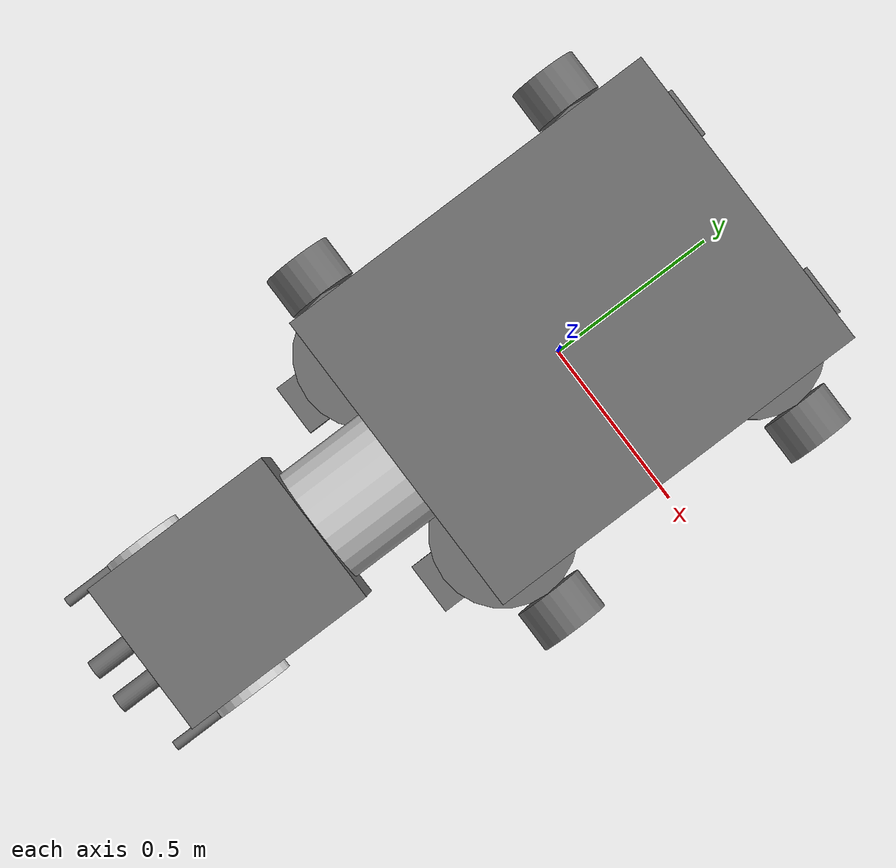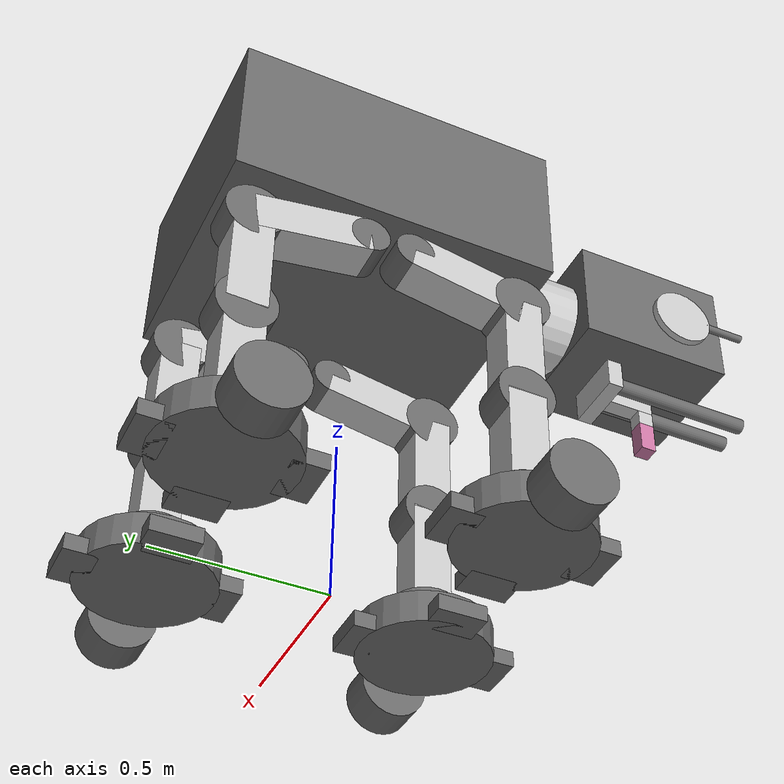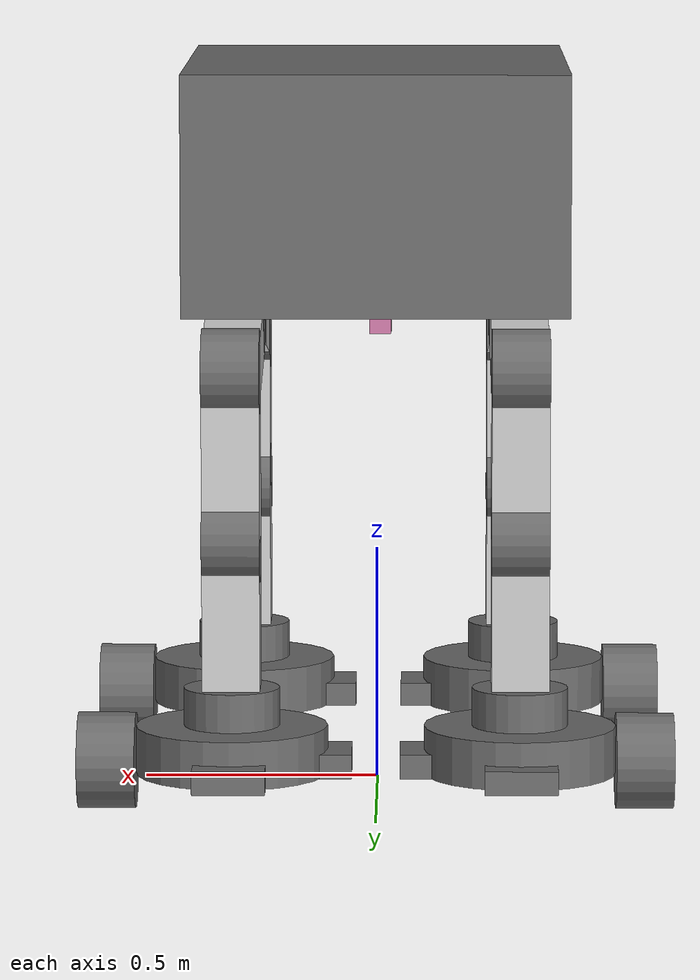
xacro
<?xml version="1.0"?>

<robot xmlns:xacro = "http://www.ros.org/wiki/xacro" name="AT-AT_w">

<xacro:property name="robotname" value="AT-AT_w"/>

<xacro:macro name="inertial" params="mass">
        <inertial>
            <mass value="${mass}"/>
            <inertia ixx="1e-3" ixy = "0.0" ixz="0.0" iyy="1e-3" iyz="0.0" izz="1e-3"/>
            <origin xyz="0.0 0.0 0.0" rpy="0.0 0.0 0.0"/>
        </inertial>
</xacro:macro>

<xacro:include filename="$(find mproject)/model/AT-AT_w.gazebo"/>

    <material name="light grey">
        <color rgba="0.79 0.79 0.79 1" />
    </material>

    <material name="dark grey">
        <color rgba="0.42 0.42 0.42 1" />
    </material>

    <link name="base_footprint"/>

    <link name="base_link">
        <visual>
            <geometry>
                <box size="0.8 1 0.5" />
            </geometry>
            <origin xyz="0 0 0" rpy="0 0 0" />
            <material name="dark grey" />
        </visual>

    <collision>
        <geometry>
            <box size="0.8 1 0.5" />
        </geometry>
    </collision>

    <xacro:inertial mass="${0.4*1200}"/>
    </link>

    <joint name="base_footprint_base_joint" type="fixed">
        <parent link="base_footprint"/>
        <child link="base_link"/>
        <origin xyz="0 0 1.3" rpy="0 0 0"/>
    </joint>

    <link name="neck_link">
        <visual>
            <geometry>
                <cylinder length="0.25" radius="0.15"/>
            </geometry>
            <origin xyz="0 0 0" rpy="0 1.57075 1.57075"/>
            <material name="light grey">
                <color rgba="0.79 0.79 0.79 1" />
            </material>
        </visual>

        <collision>
            <geometry>
                <cylinder length="0.25" radius="0.15"/>
            </geometry>
        </collision>

     <xacro:inertial mass="${0.018*1200}"/>
    </link>

    <joint name="base_neck_joint" type="fixed">
        <parent link="base_link"/>
        <child link="neck_link"/>
        <origin xyz="0 -0.62 -0.05" rpy="0 0 0"/>
    </joint>

    <link name="head_link">
        <visual>
            <geometry>
                <box size="0.4 0.5 0.35"/>
            </geometry>
            <origin xyz="0 0 0" rpy="0 0 0"/>
            <material name="dark grey" />
        </visual>

        <collision>
            <geometry>
                <box size="0.4 0.5 0.35"/>
            </geometry>
        </collision>

     <xacro:inertial mass="${0.07*1200}"/>
    </link>

    <joint name="neck_head_joint" type="fixed">
        <parent link="neck_link"/>
        <child link="head_link"/>
        <origin xyz="0 -0.37 0.02" rpy="0 0 0"/>
    </joint>

    <link name="eye_left_link">
        <visual>
            <geometry>
                <cylinder length="0.025" radius="0.1"/>
            </geometry>
            <origin xyz="0 0 0" rpy="0 1.57075 1.57075"/>
            <material name="light grey" />
        </visual>

        <collision>
            <geometry>
                <cylinder length="0.025" radius="0.1"/>
            </geometry>
        </collision>

     <xacro:inertial mass="${0.000785*1200}"/>
    </link>

    <joint name="head_eye_left_joint" type="fixed">
        <parent link="head_link"/>
        <child link="eye_left_link"/>
        <origin xyz="0.21 -0.1 0" rpy="0 0 1.57057"/>
    </joint>

    <link name="eye_right_link">
        <visual>
            <geometry>
                <cylinder length="0.025" radius="0.1"/>
            </geometry>
            <origin xyz="0 0 0" rpy="0 1.57075 1.57075"/>
            <material name="light grey" />
        </visual>

        <collision>
            <geometry>
                <cylinder length="0.025" radius="0.1"/>
            </geometry>
        </collision>

     <xacro:inertial mass="${0.000785*1200}"/>
    </link>

    <joint name="head_eye_right_joint" type="fixed">
        <parent link="head_link"/>
        <child link="eye_right_link"/>
        <origin xyz="-0.21 -0.1 0" rpy="0 0 1.57057"/>
    </joint>

    <link name="shooter_left_link">
        <visual>
            <geometry>
                <cylinder length="0.15" radius="0.0125"/>
            </geometry>
            <origin xyz="0 0.15 0" rpy="0 1.57075 1.57075"/>
            <material name="dark grey" />
        </visual>

        <collision>
            <geometry>
                <cylinder length="0.15" radius="0.0125"/>
            </geometry>
        </collision>

     <xacro:inertial mass="${0.000884*1200}"/>
    </link>

    <joint name="eye_left_shooter_joint" type="fixed">
        <limit effort="100" velocity="1.0" lower="-1.0" upper="0"/>
        <parent link="eye_left_link"/>
        <child link="shooter_left_link"/>
        <origin xyz="0 0 0" rpy="0 0 1.57057"/>
        <axis xyz="1 0 0" rpy="0 0 0"/>
        <dynamics damping = "1.0" friction ="0.4"/>
    </joint>

    <link name="shooter_right_link">
        <visual>
            <geometry>
                <cylinder length="0.15" radius="0.0125"/>
            </geometry>
            <origin xyz="0 0.15 0" rpy="0 1.57075 1.57075"/>
            <material name="dark grey" />
        </visual>

        <collision>
            <geometry>
                <cylinder length="0.15" radius="0.0125"/>
            </geometry>
        </collision>

     <xacro:inertial mass="${0.000884*1200}"/>
    </link>

    <joint name="eye_right_shooter_joint" type="fixed">
        <limit effort="100" velocity="1.0" lower="-1.0" upper="0"/>
        <parent link="eye_right_link"/>
        <child link="shooter_right_link"/>
        <origin xyz="0 0 0" rpy="0 0 1.57057"/>
        <axis xyz="1 0 0" rpy="0 0 0"/>
        <dynamics damping = "1.0" friction ="0.4"/>
    </joint>

    <link name="mouth1_link">
        <visual>
            <geometry>
                <box size="0.05 0.15 0.1"/>
            </geometry>
            <origin xyz="0 0 0" rpy="0 0 0"/>
            <material name="light grey" />
        </visual>

        <collision>
            <geometry>
                <box size="0.05 0.15 0.1"/>
            </geometry>
        </collision>

     <xacro:inertial mass="${0.00075*1200}"/>
    </link>

    <joint name="head_mouth1_joint" type="fixed">
        <parent link="head_link"/>
        <child link="mouth1_link"/>
        <origin xyz="0 0 -0.225" rpy="0 0 0"/>
        <axis xyz="0 0 0" rpy="0 0 0"/>
    </joint>

    <link name="mouth2_link">
        <visual>
            <geometry>
                <box size="0.05 0.2 0.1"/>
            </geometry>
            <origin xyz="0 0 0" rpy="0 0 0"/>
            <material name="light grey" />
        </visual>

        <collision>
            <geometry>
                <box size="0.05 0.2 0.1"/>
            </geometry>
        </collision>

     <xacro:inertial mass="${0.001*1200}"/>
    </link>

    <joint name="head_mouth2_joint" type="fixed">
        <parent link="head_link"/>
        <child link="mouth2_link"/>
        <origin xyz="0 0.1 -0.225" rpy="0 0 1.57057"/>
        <axis xyz="0 0 0" rpy="0 0 0"/>
    </joint>

    <link name="main_shooter_right_link">
        <visual>
            <geometry>
                <cylinder length="0.5" radius="0.025"/>
            </geometry>
            <origin xyz="0 0.25 0" rpy="0 1.57075 1.57075"/>
            <material name="dark grey" />
        </visual>

        <collision>
            <geometry>
                <cylinder length="0.5" radius="0.025"/>
            </geometry>
        </collision>

     <xacro:inertial mass="${0.000982*1200}"/>
    </link>

    <joint name="mouth_main_shooter_right_joint" type="fixed">
        <limit effort="100" velocity="1.0" lower="-0.2" upper="0"/>
        <parent link="mouth2_link"/>
        <child link="main_shooter_right_link"/>
        <origin xyz="0 0.05 0" rpy="0 0 1.57057"/>
        <axis xyz="1 0 0" rpy="0 0 0"/>
        <dynamics damping = "1.0" friction ="0.4"/>
    </joint>

    <link name="main_shooter_left_link">
        <visual>
            <geometry>
                <cylinder length="0.5" radius="0.025"/>
            </geometry>
            <origin xyz="0 0.25 0" rpy="0 1.57075 1.57075"/>
            <material name="dark grey" />
        </visual>

        <collision>
            <geometry>
                <cylinder length="0.5" radius="0.025"/>
            </geometry>
        </collision>

     <xacro:inertial mass="${0.000982*1200}"/>
    </link>

    <joint name="mouth_main_shooter_left_joint" type="fixed">
        <limit effort="100" velocity="1.0" lower="-0.2" upper="0"/>
        <parent link="mouth2_link"/>
        <child link="main_shooter_left_link"/>
        <origin xyz="0 -0.05 0" rpy="0 0 1.57057"/>
        <axis xyz="1 0 0" rpy="0 0 0"/>
        <dynamics damping = "1.0" friction ="0.4"/>
    </joint>

    <link name="leg1_u_link">
        <visual>
            <geometry>
                <cylinder length="0.12" radius="0.06"/>
            </geometry>
            <origin xyz="0 0 0" rpy="0 1.57075 0"/>
            <material name="dark grey" />
        </visual>

        <collision>
            <geometry>
                <cylinder length="0.12" radius="0.06"/>
            </geometry>
        </collision>

        <xacro:inertial mass="${0.00136*1200}"/>
    </link>

    <joint name="base_leg1_joint" type="fixed">
        <parent link="base_link"/>
        <child link="leg1_u_link"/>
        <origin xyz="0.3 -0.07 -0.31" rpy="0 0 0"/>
    </joint>

    <link name="leg1_p1_link">
        <visual>
            <geometry>
                <box size="0.12 0.12 0.35"/>
            </geometry>
            <origin xyz="0 0 -0.175" rpy="0 0 0"/>
            <material name="light grey" />
        </visual>

        <collision>
            <geometry>
                <box size="0.12 0.12 0.35"/>
            </geometry>
        </collision>

        <xacro:inertial mass="${0.00504*1200}"/>
    </link>

    <joint name="leg1_u_p1_link" type="fixed">
        <limit effort="100" velocity="1.0" lower="0" upper="0.5"/>
        <parent link="leg1_u_link"/>
        <child link="leg1_p1_link"/>
        <origin xyz="0 0 0" rpy="-1.4 0 0"/>
        <dynamics damping = "1.0" friction ="0.4"/>
    </joint>

    <link name="leg1_m_link">
        <visual>
            <geometry>
                <cylinder length="0.12" radius="0.09"/>
            </geometry>
            <origin xyz="0 0 0" rpy="0 1.57075 0"/>
            <material name="dark grey" />
        </visual>

        <collision>
            <geometry>
                <cylinder length="0.12" radius="0.09"/>
            </geometry>
        </collision>

        <xacro:inertial mass="${0.00305*1200}"/>
    </link>

    <joint name="leg1_p1_m_link" type="fixed">
        <parent link="leg1_p1_link"/>
        <child link="leg1_m_link"/>
        <origin xyz="0 0 -0.35" rpy="0 0 0"/>
    </joint>

    <link name="leg1_p2_link">
        <visual>
            <geometry>
                <box size="0.12 0.12 0.35"/>
            </geometry>
            <origin xyz="0 0 -0.175" rpy="0 0 0"/>
            <material name="light grey" />
        </visual>

        <collision>
            <geometry>
                <box size="0.12 0.12 0.35"/>
            </geometry>
        </collision>

        <xacro:inertial mass="${0.00504*1200}"/>
    </link>

    <joint name="leg1_m_p2_link" type="fixed">
        <limit effort="100" velocity="1.2" lower="-1" upper="0.2"/>
        <parent link="leg1_m_link"/>
        <child link="leg1_p2_link"/>
        <origin xyz="0 0 0" rpy="1.4 0 0"/>
        <dynamics damping = "1.0" friction ="0.4"/>
    </joint>

    <link name="leg1_l_link">
        <visual>
            <geometry>
                <cylinder length="0.12" radius="0.09"/>
            </geometry>
            <origin xyz="0 0 0" rpy="0 1.57075 0"/>
            <material name="dark grey" />
        </visual>

        <collision>
            <geometry>
                <cylinder length="0.12" radius="0.09"/>
            </geometry>
        </collision>

        <xacro:inertial mass="${0.00305*1200}"/>
    </link>

    <joint name="leg1_p1_l_link" type="fixed">
        <parent link="leg1_p2_link"/>
        <child link="leg1_l_link"/>
        <origin xyz="0 0 -0.35" rpy="0 0 0"/>
    </joint>

    <link name="leg1_p3_link">
        <visual>
            <geometry>
                <box size="0.12 0.12 0.35"/>
            </geometry>
            <origin xyz="0 0 -0.175" rpy="0 0 0"/>
            <material name="light grey" />
        </visual>

        <collision>
            <geometry>
                <box size="0.12 0.12 0.35"/>
            </geometry>
        </collision>

        <xacro:inertial mass="${0.00504*1200}"/>
    </link>

    <joint name="leg1_l_p3_link" type="fixed">
        <limit effort="100" velocity="1.2" lower="0" upper="1"/>
        <parent link="leg1_l_link"/>
        <child link="leg1_p3_link"/>
        <origin xyz="0 0 0" rpy="0 0 0"/>
        <dynamics damping = "1.0" friction ="0.4"/>
    </joint>

    <link name="leg1_feet1_link">
        <visual>
            <geometry>
                <cylinder length="0.08" radius="0.1"/>
            </geometry>
            <origin xyz="0 0 0" rpy="0 0 0"/>
            <material name="dark grey" />
        </visual>

        <collision>
            <geometry>
                <cylinder length="0.08" radius="0.1"/>
            </geometry>
        </collision>

        <xacro:inertial mass="${0.00251*1200}"/>
    </link>

    <joint name="leg1_p3_feet1_joint" type="fixed">
        <parent link="leg1_p3_link"/>
        <child link="leg1_feet1_link"/>
        <origin xyz="0 0 -0.35" rpy="0 0 0"/>
        <axis xyz="0 0 0" rpy="0 0 0"/>
    </joint>

    <link name="leg1_feet2_link">
        <visual>
            <geometry>
                <cylinder length="0.1" radius="0.2"/>
            </geometry>
            <origin xyz="0 0 0" rpy="0 0 0"/>
            <material name="dark grey" />
        </visual>

        <collision>
            <geometry>
                <cylinder length="0.1" radius="0.2"/>
            </geometry>
        </collision>

        <xacro:inertial mass="${0.013*1200}"/>
    </link>

    <joint name="leg1_p3_feet2_joint" type="fixed">
        <parent link="leg1_feet1_link"/>
        <child link="leg1_feet2_link"/>
        <origin xyz="0 0 -0.09" rpy="0 0 0"/>
        <axis xyz="0 0 0" rpy="0 0 0"/>
    </joint>

    <link name="leg1_toe1_link">
        <visual>
            <geometry>
                <cylinder length="0.12" radius="0.1"/>    <!-- wheel -->
            </geometry>
            <origin xyz="0 0 0" rpy="1.57057 0 1.57057"/>
            <material name="dark grey" />
        </visual>

        <collision>
        <origin xyz="0 0 0" rpy="1.57057 0 1.57057"/>
            <geometry>
                <cylinder length="0.12" radius="0.1"/>    <!-- wheel -->
            </geometry>
        </collision>

        <xacro:inertial mass="${0.00075*1180}"/>
    </link>

    <joint name="leg1_feet2_toe1_joint" type="continuous">
        <parent link="leg1_feet2_link"/>
        <child link="leg1_toe1_link"/>
        <origin xyz="0.26 0 -0.025" rpy="0 0 0"/>
        <axis xyz="1 0 0" rpy="0 0 0"/>
        <limit effort="10.0" velocity="10.0"/>
        <dynamics damping = "0.01" friction ="0.4"/>
    </joint>

    <link name="leg1_toe2_link">
        <visual>
            <geometry>
                <box size="0.1 0.15 0.05"/>
            </geometry>
            <origin xyz="0 0 0" rpy="0 0 0"/>
            <material name="dark grey" />
        </visual>

        <collision>
            <geometry>
                <box size="0.1 0.15 0.05"/>
            </geometry>
        </collision>

        <xacro:inertial mass="${0.00075*1200}"/>
    </link>

    <joint name="leg1_feet2_toe2_joint" type="fixed">
        <parent link="leg1_feet2_link"/>
        <child link="leg1_toe2_link"/>
        <origin xyz="0 0.2 -0.025" rpy="0 0 1.57057"/>
        <axis xyz="0 0 0" rpy="0 0 0"/>
    </joint>

    <link name="leg1_toe3_link">
        <visual>
            <geometry>
                <box size="0.1 0.15 0.05"/>
            </geometry>
            <origin xyz="0 0 0" rpy="0 0 0"/>
            <material name="dark grey" />
        </visual>

        <collision>
            <geometry>
                <box size="0.1 0.15 0.05"/>
            </geometry>
        </collision>

        <xacro:inertial mass="${0.00075*1200}"/>
    </link>

    <joint name="leg1_feet2_toe3_joint" type="fixed">
        <parent link="leg1_feet2_link"/>
        <child link="leg1_toe3_link"/>
        <origin xyz="-0.2 0 -0.025" rpy="0 0 0"/>
        <axis xyz="0 0 0" rpy="0 0 0"/>
    </joint>

    <link name="leg1_toe4_link">
        <visual>
            <geometry>
                <box size="0.1 0.15 0.05"/>
            </geometry>
            <origin xyz="0 0 0" rpy="0 0 0"/>
            <material name="dark grey" />
        </visual>

        <collision>
            <geometry>
                <box size="0.1 0.15 0.05"/>
            </geometry>
        </collision>

        <xacro:inertial mass="${0.00075*1200}"/>
    </link>

    <joint name="leg1_feet2_toe4_joint" type="fixed">
        <parent link="leg1_feet2_link"/>
        <child link="leg1_toe4_link"/>
        <origin xyz="0 -0.2 -0.025" rpy="0 0 1.57057"/>
        <axis xyz="0 0 0" rpy="0 0 0"/>
    </joint>

    <link name="leg2_u_link">
        <visual>
            <geometry>
                <cylinder length="0.12" radius="0.06"/>
            </geometry>
            <origin xyz="0 0 0" rpy="0 1.57075 0"/>
            <material name="dark grey" />
        </visual>

        <collision>
            <geometry>
                <cylinder length="0.12" radius="0.06"/>
            </geometry>
        </collision>

        <xacro:inertial mass="${0.00136*1200}"/>
    </link>

    <joint name="base_leg2_joint" type="fixed">
        <parent link="base_link"/>
        <child link="leg2_u_link"/>
        <origin xyz="-0.3 -0.07 -0.31" rpy="0 0 0"/>
    </joint>

    <link name="leg2_p1_link">
        <visual>
            <geometry>
                <box size="0.12 0.12 0.35"/>
            </geometry>
            <origin xyz="0 0 -0.175" rpy="0 0 0"/>
            <material name="light grey" />
        </visual>

        <collision>
            <geometry>
                <box size="0.12 0.12 0.35"/>
            </geometry>
        </collision>

        <xacro:inertial mass="${0.00504*1200}"/>
    </link>

    <joint name="leg2_u_p1_link" type="fixed">
        <limit effort="100" velocity="1.0" lower="0" upper="0.5"/>
        <parent link="leg2_u_link"/>
        <child link="leg2_p1_link"/>
        <origin xyz="0 0 0" rpy="-1.4 0 0"/>
        <dynamics damping = "1.0" friction ="0.4"/>
    </joint>

    <link name="leg2_m_link">
        <visual>
            <geometry>
                <cylinder length="0.12" radius="0.09"/>
            </geometry>
            <origin xyz="0 0 0" rpy="0 1.57075 0"/>
            <material name="dark grey" />
        </visual>

        <collision>
            <geometry>
                <cylinder length="0.12" radius="0.09"/>
            </geometry>
        </collision>

        <xacro:inertial mass="${0.00305*1200}"/>
    </link>

    <joint name="leg2_p1_m_link" type="fixed">
        <parent link="leg2_p1_link"/>
        <child link="leg2_m_link"/>
        <origin xyz="0 0 -0.35" rpy="0 0 0"/>
    </joint>

    <link name="leg2_p2_link">
        <visual>
            <geometry>
                <box size="0.12 0.12 0.35"/>
            </geometry>
            <origin xyz="0 0 -0.175" rpy="0 0 0"/>
            <material name="light grey" />
        </visual>

        <collision>
            <geometry>
                <box size="0.12 0.12 0.35"/>
            </geometry>
        </collision>

        <xacro:inertial mass="${0.00504*1200}"/>
    </link>

    <joint name="leg2_m_p2_link" type="fixed">
        <limit effort="100" velocity="1.2" lower="-1" upper="0.2"/>
        <parent link="leg2_m_link"/>
        <child link="leg2_p2_link"/>
        <origin xyz="0 0 0" rpy="1.4 0 0"/>
        <dynamics damping = "1.0" friction ="0.4"/>
    </joint>

    <link name="leg2_l_link">
        <visual>
            <geometry>
                <cylinder length="0.12" radius="0.09"/>
            </geometry>
            <origin xyz="0 0 0" rpy="0 1.57075 0"/>
            <material name="dark grey" />
        </visual>

        <collision>
            <geometry>
                <cylinder length="0.12" radius="0.09"/>
            </geometry>
        </collision>

        <xacro:inertial mass="${0.00305*1200}"/>
    </link>

    <joint name="leg2_p1_l_link" type="fixed">
        <parent link="leg2_p2_link"/>
        <child link="leg2_l_link"/>
        <origin xyz="0 0 -0.35" rpy="0 0 0"/>
    </joint>

    <link name="leg2_p3_link">
        <visual>
            <geometry>
                <box size="0.12 0.12 0.35"/>
            </geometry>
            <origin xyz="0 0 -0.175" rpy="0 0 0"/>
            <material name="light grey" />
        </visual>

        <collision>
            <geometry>
                <box size="0.12 0.12 0.35"/>
            </geometry>
        </collision>

        <xacro:inertial mass="${0.00504*1200}"/>
    </link>

    <joint name="leg2_l_p3_link" type="fixed">
        <limit effort="100" velocity="1.2" lower="0" upper="1"/>
        <parent link="leg2_l_link"/>
        <child link="leg2_p3_link"/>
        <origin xyz="0 0 0" rpy="0 0 0"/>
        <dynamics damping = "1.0" friction ="0.4"/>
    </joint>

    <link name="leg2_feet1_link">
        <visual>
            <geometry>
                <cylinder length="0.08" radius="0.1"/>
            </geometry>
            <origin xyz="0 0 0" rpy="0 0 0"/>
            <material name="dark grey" />
        </visual>

        <collision>
            <geometry>
                <cylinder length="0.08" radius="0.1"/>
            </geometry>
        </collision>

        <xacro:inertial mass="${0.00251*1200}"/>
    </link>

    <joint name="leg2_p3_feet1_joint" type="fixed">
        <parent link="leg2_p3_link"/>
        <child link="leg2_feet1_link"/>
        <origin xyz="0 0 -0.35" rpy="0 0 0"/>
        <axis xyz="0 0 0" rpy="0 0 0"/>
    </joint>

    <link name="leg2_feet2_link">
        <visual>
            <geometry>
                <cylinder length="0.1" radius="0.2"/>
            </geometry>
            <origin xyz="0 0 0" rpy="0 0 0"/>
            <material name="dark grey" />
        </visual>

        <collision>
            <geometry>
                <cylinder length="0.1" radius="0.2"/>
            </geometry>
        </collision>

        <xacro:inertial mass="${0.013*1200}"/>
    </link>

    <joint name="leg2_p3_feet2_joint" type="fixed">
        <parent link="leg2_feet1_link"/>
        <child link="leg2_feet2_link"/>
        <origin xyz="0 0 -0.09" rpy="0 0 0"/>
        <axis xyz="0 0 0" rpy="0 0 0"/>
    </joint>

    <link name="leg2_toe1_link">
        <visual>
            <geometry>
                <box size="0.1 0.15 0.05"/>
            </geometry>
            <origin xyz="0 0 0" rpy="0 0 0"/>
            <material name="dark grey" />
        </visual>

        <collision>
            <geometry>
                <box size="0.1 0.15 0.05"/>
            </geometry>
        </collision>

        <xacro:inertial mass="${0.00075*1200}"/>
    </link>

    <joint name="leg2_feet2_toe1_joint" type="fixed">
        <parent link="leg2_feet2_link"/>
        <child link="leg2_toe1_link"/>
        <origin xyz="0.2 0 -0.025" rpy="0 0 0"/>
        <axis xyz="0 0 0" rpy="0 0 0"/>
    </joint>

    <link name="leg2_toe2_link">
        <visual>
            <geometry>
                <box size="0.1 0.15 0.05"/>
            </geometry>
            <origin xyz="0 0 0" rpy="0 0 0"/>
            <material name="dark grey" />
        </visual>

        <collision>
            <geometry>
                <box size="0.1 0.15 0.05"/>
            </geometry>
        </collision>

        <xacro:inertial mass="${0.00075*1200}"/>
    </link>

    <joint name="leg2_feet2_toe2_joint" type="fixed">
        <parent link="leg2_feet2_link"/>
        <child link="leg2_toe2_link"/>
        <origin xyz="0 0.2 -0.025" rpy="0 0 1.57057"/>
        <axis xyz="0 0 0" rpy="0 0 0"/>
    </joint>

    <link name="leg2_toe3_link">
        <visual>
            <geometry>
                <cylinder length="0.12" radius="0.1"/>    <!-- wheel -->
            </geometry>
            <origin xyz="0 0 0" rpy="1.57057 0 1.57057"/>
            <material name="dark grey" />
        </visual>

        <collision>
        <origin xyz="0 0 0" rpy="1.57057 0 1.57057"/>
            <geometry>
                <cylinder length="0.12" radius="0.1"/>    <!-- wheel -->
            </geometry>
        </collision>

        <xacro:inertial mass="${0.00075*1180}"/>
    </link>

    <joint name="leg2_feet2_toe3_joint" type="continuous">
        <parent link="leg2_feet2_link"/>
        <child link="leg2_toe3_link"/>
        <origin xyz="-0.26 0 -0.025" rpy="0 0 0"/>
        <axis xyz="1 0 0" rpy="0 0 0"/>
        <limit effort="10.0" velocity="10.0"/>
        <dynamics damping = "0.01" friction ="0.4"/>
    </joint>

    <link name="leg2_toe4_link">
        <visual>
            <geometry>
                <box size="0.1 0.15 0.05"/>
            </geometry>
            <origin xyz="0 0 0" rpy="0 0 0"/>
            <material name="dark grey" />
        </visual>

        <collision>
            <geometry>
                <box size="0.1 0.15 0.05"/>
            </geometry>
        </collision>

        <xacro:inertial mass="${0.00075*1200}"/>
    </link>

    <joint name="leg2_feet2_toe4_joint" type="fixed">
        <parent link="leg2_feet2_link"/>
        <child link="leg2_toe4_link"/>
        <origin xyz="0 -0.2 -0.025" rpy="0 0 1.57057"/>
        <axis xyz="0 0 0" rpy="0 0 0"/>
    </joint>

    <link name="leg3_u_link">
        <visual>
            <geometry>
                <cylinder length="0.12" radius="0.06"/>
            </geometry>
            <origin xyz="0 0 0" rpy="0 1.57075 0"/>
            <material name="dark grey" />
        </visual>

        <collision>
            <geometry>
                <cylinder length="0.12" radius="0.06"/>
            </geometry>
        </collision>

        <xacro:inertial mass="${0.00136*1200}"/>
    </link>

    <joint name="base_leg3_joint" type="fixed">
        <parent link="base_link"/>
        <child link="leg3_u_link"/>
        <origin xyz="0.3 0.07 -0.31" rpy="0 0 0"/>
    </joint>

    <link name="leg3_p1_link">
        <visual>
            <geometry>
                <box size="0.12 0.12 0.35"/>
            </geometry>
            <origin xyz="0 0 -0.175" rpy="0 0 0"/>
            <material name="light grey" />
        </visual>

        <collision>
            <geometry>
                <box size="0.12 0.12 0.35"/>
            </geometry>
        </collision>

        <xacro:inertial mass="${0.00504*1200}"/>
    </link>

    <joint name="leg3_u_p1_link" type="fixed">
        <limit effort="100" velocity="1.0" lower="0" upper="0.5"/>
        <parent link="leg3_u_link"/>
        <child link="leg3_p1_link"/>
        <origin xyz="0 0 0" rpy="-1.4 0 3.14114"/>
        <dynamics damping = "1.0" friction ="0.4"/>
    </joint>

    <link name="leg3_m_link">
        <visual>
            <geometry>
                <cylinder length="0.12" radius="0.09"/>
            </geometry>
            <origin xyz="0 0 0" rpy="0 1.57075 0"/>
            <material name="dark grey" />
        </visual>

        <collision>
            <geometry>
                <cylinder length="0.12" radius="0.09"/>
            </geometry>
        </collision>

        <xacro:inertial mass="${0.00305*1200}"/>
    </link>

    <joint name="leg3_p1_m_link" type="fixed">
        <parent link="leg3_p1_link"/>
        <child link="leg3_m_link"/>
        <origin xyz="0 0 -0.35" rpy="0 0 0"/>
    </joint>

    <link name="leg3_p2_link">
        <visual>
            <geometry>
                <box size="0.12 0.12 0.35"/>
            </geometry>
            <origin xyz="0 0 -0.175" rpy="0 0 0"/>
            <material name="light grey" />
        </visual>

        <collision>
            <geometry>
                <box size="0.12 0.12 0.35"/>
            </geometry>
        </collision>

        <xacro:inertial mass="${0.00504*1200}"/>
    </link>

    <joint name="leg3_m_p2_link" type="fixed">
        <limit effort="100" velocity="1.2" lower="-1" upper="0.2"/>
        <parent link="leg3_m_link"/>
        <child link="leg3_p2_link"/>
        <origin xyz="0 0 0" rpy="1.4 0 0"/>
        <dynamics damping = "1.0" friction ="0.4"/>
    </joint>

    <link name="leg3_l_link">
        <visual>
            <geometry>
                <cylinder length="0.12" radius="0.09"/>
            </geometry>
            <origin xyz="0 0 0" rpy="0 1.57075 0"/>
            <material name="dark grey" />
        </visual>

        <collision>
            <geometry>
                <cylinder length="0.12" radius="0.09"/>
            </geometry>
        </collision>

        <xacro:inertial mass="${0.00305*1200}"/>
    </link>

    <joint name="leg3_p1_l_link" type="fixed">
        <parent link="leg3_p2_link"/>
        <child link="leg3_l_link"/>
        <origin xyz="0 0 -0.35" rpy="0 0 0"/>
    </joint>

    <link name="leg3_p3_link">
        <visual>
            <geometry>
                <box size="0.12 0.12 0.35"/>
            </geometry>
            <origin xyz="0 0 -0.175" rpy="0 0 0"/>
            <material name="light grey" />
        </visual>

        <collision>
            <geometry>
                <box size="0.12 0.12 0.35"/>
            </geometry>
        </collision>

        <xacro:inertial mass="${0.00504*1200}"/>
    </link>

    <joint name="leg3_l_p3_link" type="fixed">
        <limit effort="100" velocity="1.2" lower="0" upper="1"/>
        <parent link="leg3_l_link"/>
        <child link="leg3_p3_link"/>
        <origin xyz="0 0 0" rpy="0 0 0"/>
        <dynamics damping = "1.0" friction ="0.4"/>
    </joint>

    <link name="leg3_feet1_link">
        <visual>
            <geometry>
                <cylinder length="0.08" radius="0.1"/>
            </geometry>
            <origin xyz="0 0 0" rpy="0 0 0"/>
            <material name="dark grey" />
        </visual>

        <collision>
            <geometry>
                <cylinder length="0.08" radius="0.1"/>
            </geometry>
        </collision>

        <xacro:inertial mass="${0.00251*1200}"/>
    </link>

    <joint name="leg3_p3_feet1_joint" type="fixed">
        <parent link="leg3_p3_link"/>
        <child link="leg3_feet1_link"/>
        <origin xyz="0 0 -0.35" rpy="0 0 0"/>
        <axis xyz="0 0 0" rpy="0 0 0"/>
    </joint>

    <link name="leg3_feet2_link">
        <visual>
            <geometry>
                <cylinder length="0.1" radius="0.2"/>
            </geometry>
            <origin xyz="0 0 0" rpy="0 0 0"/>
            <material name="dark grey" />
        </visual>

        <collision>
            <geometry>
                <cylinder length="0.1" radius="0.2"/>
            </geometry>
        </collision>

        <xacro:inertial mass="${0.013*1200}"/>
    </link>

    <joint name="leg3_p3_feet2_joint" type="fixed">
        <parent link="leg3_feet1_link"/>
        <child link="leg3_feet2_link"/>
        <origin xyz="0 0 -0.09" rpy="0 0 0"/>
        <axis xyz="0 0 0" rpy="0 0 0"/>
    </joint>

    <link name="leg3_toe1_link">
        <visual>
            <geometry>
                <box size="0.1 0.15 0.05"/>
            </geometry>
            <origin xyz="0 0 0" rpy="0 0 0"/>
            <material name="dark grey" />
        </visual>

        <collision>
            <geometry>
                <box size="0.1 0.15 0.05"/>
            </geometry>
        </collision>

        <xacro:inertial mass="${0.00075*1200}"/>
    </link>

    <joint name="leg3_feet2_toe1_joint" type="fixed">
        <parent link="leg3_feet2_link"/>
        <child link="leg3_toe1_link"/>
        <origin xyz="0.2 0 -0.025" rpy="0 0 0"/>
        <axis xyz="0 0 0" rpy="0 0 0"/>
    </joint>

    <link name="leg3_toe2_link">
        <visual>
            <geometry>
                <box size="0.1 0.15 0.05"/>
            </geometry>
            <origin xyz="0 0 0" rpy="0 0 0"/>
            <material name="dark grey" />
        </visual>

        <collision>
            <geometry>
                <box size="0.1 0.15 0.05"/>
            </geometry>
        </collision>

        <xacro:inertial mass="${0.00075*1200}"/>
    </link>

    <joint name="leg3_feet2_toe2_joint" type="fixed">
        <parent link="leg3_feet2_link"/>
        <child link="leg3_toe2_link"/>
        <origin xyz="0 0.2 -0.025" rpy="0 0 1.57057"/>
        <axis xyz="0 0 0" rpy="0 0 0"/>
    </joint>

    <link name="leg3_toe3_link">
        <visual>
            <geometry>
                <cylinder length="0.12" radius="0.1"/>    <!-- wheel -->
            </geometry>
            <origin xyz="0 0 0" rpy="1.57057 0 1.57057"/>
            <material name="dark grey" />
        </visual>

        <collision>
        <origin xyz="0 0 0" rpy="1.57057 0 1.57057"/>
            <geometry>
                <cylinder length="0.12" radius="0.1"/>    <!-- wheel -->
            </geometry>
        </collision>

        <xacro:inertial mass="${0.00075*1180}"/>
    </link>

    <joint name="leg3_feet2_toe3_joint" type="continuous">
        <parent link="leg3_feet2_link"/>
        <child link="leg3_toe3_link"/>
        <origin xyz="-0.26 0 -0.025" rpy="0 0 3.14"/>
        <axis xyz="1 0 0" rpy="0 0 0"/>
        <limit effort="10.0" velocity="10.0"/>
        <dynamics damping = "0.01" friction ="0.4"/>
    </joint>

    <link name="leg3_toe4_link">
        <visual>
            <geometry>
                <box size="0.1 0.15 0.05"/>
            </geometry>
            <origin xyz="0 0 0" rpy="0 0 0"/>
            <material name="dark grey" />
        </visual>

        <collision>
            <geometry>
                <box size="0.1 0.15 0.05"/>
            </geometry>
        </collision>

        <xacro:inertial mass="${0.00075*1200}"/>
    </link>

    <joint name="leg3_feet2_toe4_joint" type="fixed">
        <parent link="leg3_feet2_link"/>
        <child link="leg3_toe4_link"/>
        <origin xyz="0 -0.2 -0.025" rpy="0 0 1.57057"/>
        <axis xyz="0 0 0" rpy="0 0 0"/>
    </joint>

    <link name="leg4_u_link">
        <visual>
            <geometry>
                <cylinder length="0.12" radius="0.06"/>
            </geometry>
            <origin xyz="0 0 0" rpy="0 1.57075 0"/>
            <material name="dark grey" />
        </visual>

        <collision>
            <geometry>
                <cylinder length="0.12" radius="0.06"/>
            </geometry>
        </collision>

        <xacro:inertial mass="${0.00136*1200}"/>
    </link>

    <joint name="base_leg4_joint" type="fixed">
        <parent link="base_link"/>
        <child link="leg4_u_link"/>
        <origin xyz="-0.3 0.07 -0.31" rpy="0 0 0"/>
    </joint>

    <link name="leg4_p1_link">
        <visual>
            <geometry>
                <box size="0.12 0.12 0.35"/>
            </geometry>
            <origin xyz="0 0 -0.175" rpy="0 0 0"/>
            <material name="light grey" />
        </visual>

        <collision>
            <geometry>
                <box size="0.12 0.12 0.35"/>
            </geometry>
        </collision>

        <xacro:inertial mass="${0.00504*1200}"/>
    </link>

    <joint name="leg4_u_p1_link" type="fixed">
        <limit effort="100" velocity="1.0" lower="0" upper="0.5"/>
        <parent link="leg4_u_link"/>
        <child link="leg4_p1_link"/>
        <origin xyz="0 0 0" rpy="-1.4 0 3.14114"/>
        <dynamics damping = "1.0" friction ="0.4"/>
    </joint>

    <link name="leg4_m_link">
        <visual>
            <geometry>
                <cylinder length="0.12" radius="0.09"/>
            </geometry>
            <origin xyz="0 0 0" rpy="0 1.57075 0"/>
            <material name="dark grey" />
        </visual>

        <collision>
            <geometry>
                <cylinder length="0.12" radius="0.09"/>
            </geometry>
        </collision>

        <xacro:inertial mass="${0.00305*1200}"/>
    </link>

    <joint name="leg4_p1_m_link" type="fixed">
        <parent link="leg4_p1_link"/>
        <child link="leg4_m_link"/>
        <origin xyz="0 0 -0.35" rpy="0 0 0"/>
    </joint>

    <link name="leg4_p2_link">
        <visual>
            <geometry>
                <box size="0.12 0.12 0.35"/>
            </geometry>
            <origin xyz="0 0 -0.175" rpy="0 0 0"/>
            <material name="light grey" />
        </visual>

        <collision>
            <geometry>
                <box size="0.12 0.12 0.35"/>
            </geometry>
        </collision>

        <xacro:inertial mass="${0.00504*1200}"/>
    </link>

    <joint name="leg4_m_p2_link" type="fixed">
        <limit effort="100" velocity="1.2" lower="-1" upper="0.2"/>
        <parent link="leg4_m_link"/>
        <child link="leg4_p2_link"/>
        <origin xyz="0 0 0" rpy="1.4 0 0"/>
        <dynamics damping = "1.0" friction ="0.4"/>
    </joint>

    <link name="leg4_l_link">
        <visual>
            <geometry>
                <cylinder length="0.12" radius="0.09"/>
            </geometry>
            <origin xyz="0 0 0" rpy="0 1.57075 0"/>
            <material name="dark grey" />
        </visual>

        <collision>
            <geometry>
                <cylinder length="0.12" radius="0.09"/>
            </geometry>
        </collision>

        <xacro:inertial mass="${0.00305*1200}"/>
    </link>

    <joint name="leg4_p1_l_link" type="fixed">
        <parent link="leg4_p2_link"/>
        <child link="leg4_l_link"/>
        <origin xyz="0 0 -0.35" rpy="0 0 0"/>
    </joint>

    <link name="leg4_p3_link">
        <visual>
            <geometry>
                <box size="0.12 0.12 0.35"/>
            </geometry>
            <origin xyz="0 0 -0.175" rpy="0 0 0"/>
            <material name="light grey" />
        </visual>

        <collision>
            <geometry>
                <box size="0.12 0.12 0.35"/>
            </geometry>
        </collision>

        <xacro:inertial mass="${0.00504*1200}"/>
    </link>

    <joint name="leg4_l_p3_link" type="fixed">
        <limit effort="100" velocity="1.2" lower="0" upper="1"/>
        <parent link="leg4_l_link"/>
        <child link="leg4_p3_link"/>
        <origin xyz="0 0 0" rpy="0 0 0"/>
        <dynamics damping = "1.0" friction ="0.4"/>
    </joint>

    <link name="leg4_feet1_link">
        <visual>
            <geometry>
                <cylinder length="0.08" radius="0.1"/>
            </geometry>
            <origin xyz="0 0 0" rpy="0 0 0"/>
            <material name="dark grey" />
        </visual>

        <collision>
            <geometry>
                <cylinder length="0.08" radius="0.1"/>
            </geometry>
        </collision>

        <xacro:inertial mass="${0.00251*1200}"/>
    </link>

    <joint name="leg4_p3_feet1_joint" type="fixed">
        <parent link="leg4_p3_link"/>
        <child link="leg4_feet1_link"/>
        <origin xyz="0 0 -0.35" rpy="0 0 0"/>
        <axis xyz="0 0 0" rpy="0 0 0"/>
    </joint>

    <link name="leg4_feet2_link">
        <visual>
            <geometry>
                <cylinder length="0.1" radius="0.2"/>
            </geometry>
            <origin xyz="0 0 0" rpy="0 0 0"/>
            <material name="dark grey" />
        </visual>

        <collision>
            <geometry>
                <cylinder length="0.1" radius="0.2"/>
            </geometry>
        </collision>

        <xacro:inertial mass="${0.013*1200}"/>
    </link>

    <joint name="leg4_p3_feet2_joint" type="fixed">
        <parent link="leg4_feet1_link"/>
        <child link="leg4_feet2_link"/>
        <origin xyz="0 0 -0.09" rpy="0 0 0"/>
        <axis xyz="0 0 0" rpy="0 0 0"/>
    </joint>

    <link name="leg4_toe1_link">
        <visual>
            <geometry>
                <cylinder length="0.12" radius="0.1"/>    <!-- wheel -->
            </geometry>
            <origin xyz="0 0 0" rpy="1.57057 0 1.57057"/>
            <material name="dark grey" />
        </visual>

        <collision>
        <origin xyz="0 0 0" rpy="1.57057 0 1.57057"/>
            <geometry>
                <cylinder length="0.12" radius="0.1"/>    <!-- wheel -->
            </geometry>
        </collision>

        <xacro:inertial mass="${0.00075*1180}"/>
    </link>

    <joint name="leg4_feet2_toe1_joint" type="continuous">
        <parent link="leg4_feet2_link"/>
        <child link="leg4_toe1_link"/>
        <origin xyz="0.26 0 -0.025" rpy="0 0 3.14"/>
        <axis xyz="1 0 0" rpy="0 0 0"/>
        <limit effort="10.0" velocity="10.0"/>
        <dynamics damping = "0.01" friction ="0.4"/>
    </joint>

    <link name="leg4_toe2_link">
        <visual>
            <geometry>
                <box size="0.1 0.15 0.05"/>
            </geometry>
            <origin xyz="0 0 0" rpy="0 0 0"/>
            <material name="dark grey" />
        </visual>

        <collision>
            <geometry>
                <box size="0.1 0.15 0.05"/>
            </geometry>
        </collision>

        <xacro:inertial mass="${0.00075*1200}"/>
    </link>

    <joint name="leg4_feet2_toe2_joint" type="fixed">
        <parent link="leg4_feet2_link"/>
        <child link="leg4_toe2_link"/>
        <origin xyz="0 0.2 -0.025" rpy="0 0 1.57057"/>
        <axis xyz="0 0 0" rpy="0 0 0"/>
    </joint>

    <link name="leg4_toe3_link">
        <visual>
            <geometry>
                <box size="0.1 0.15 0.05"/>
            </geometry>
            <origin xyz="0 0 0" rpy="0 0 0"/>
            <material name="dark grey" />
        </visual>

        <collision>
            <geometry>
                <box size="0.1 0.15 0.05"/>
            </geometry>
        </collision>

        <xacro:inertial mass="${0.00075*1200}"/>
    </link>

    <joint name="leg4_feet2_toe3_joint" type="fixed">
        <parent link="leg4_feet2_link"/>
        <child link="leg4_toe3_link"/>
        <origin xyz="-0.2 0 -0.025" rpy="0 0 0"/>
        <axis xyz="0 0 0" rpy="0 0 0"/>
    </joint>

    <link name="leg4_toe4_link">
        <visual>
            <geometry>
                <box size="0.1 0.15 0.05"/>
            </geometry>
            <origin xyz="0 0 0" rpy="0 0 0"/>
            <material name="dark grey" />
        </visual>

        <collision>
            <geometry>
                <box size="0.1 0.15 0.05"/>
            </geometry>
        </collision>

        <xacro:inertial mass="${0.00075*1200}"/>
    </link>

    <joint name="leg4_feet2_toe4_joint" type="fixed">
        <parent link="leg4_feet2_link"/>
        <child link="leg4_toe4_link"/>
        <origin xyz="0 -0.2 -0.025" rpy="0 0 1.57057"/>
        <axis xyz="0 0 0" rpy="0 0 0"/>
    </joint>

<link name = "camera_link_optical"></link>

<link name="camera_link">
        <visual>
             <geometry>
                <box size="0.05 0.05 0.05"/>
            </geometry>
                <origin xyz="0 0 0" rpy="0 0 0" />
            <material name="light grey" />
        </visual>
<!-- Collision Geometry-->
    <collision>
        <geometry>
            <box size="0.05 0.05 0.05" />
        </geometry>
    </collision>

<!-- Inertial Properties-->
    <xacro:inertial mass="0.2"/>
    </link>

<!--Camera to Body Joint -->
    <joint name="head_camera_joint" type="fixed">
        <parent link="mouth1_link"/>
        <child link="camera_link"/>
        <origin xyz="0 -0.05 -0.075" rpy="0 0 -1.5707"/>
    </joint>

<!-- Camera Joint -->

<joint name="camera_optical_joint" type="fixed">
    <parent link="camera_link"/>
    <child link="camera_link_optical"/>
    <origin xyz="0.0 0.0 0.0" rpy="0.0 0.0 0.0"/>
</joint>

    <link name="hokuyo">
        <visual>
        <origin xyz="0 0 0" rpy="0 0 0"/>
            <geometry>
             <box size="0.05 0.05 0.1"/>
            </geometry>
        </visual>

    <collision>
      <origin xyz="0 0 0" rpy="0 0 0"/>
      <geometry>
        <box size="0.1 0.1 0.1"/>
      </geometry>
    </collision>

    <inertial>
      <mass value="1e-5" />
      <origin xyz="0 0 0" rpy="0 0 0"/>
      <inertia ixx="1e-6" ixy="0" ixz="0" iyy="1e-6" iyz="0" izz="1e-6" />
    </inertial>
  </link>

  <joint name="hokuyo_joint" type="fixed">
    <axis xyz="0 0 0" />
    <origin xyz="0 0 -0.075" rpy="0 0 0"/>
    <parent link="camera_link"/>
    <child link="hokuyo"/>
  </joint>

</robot>
